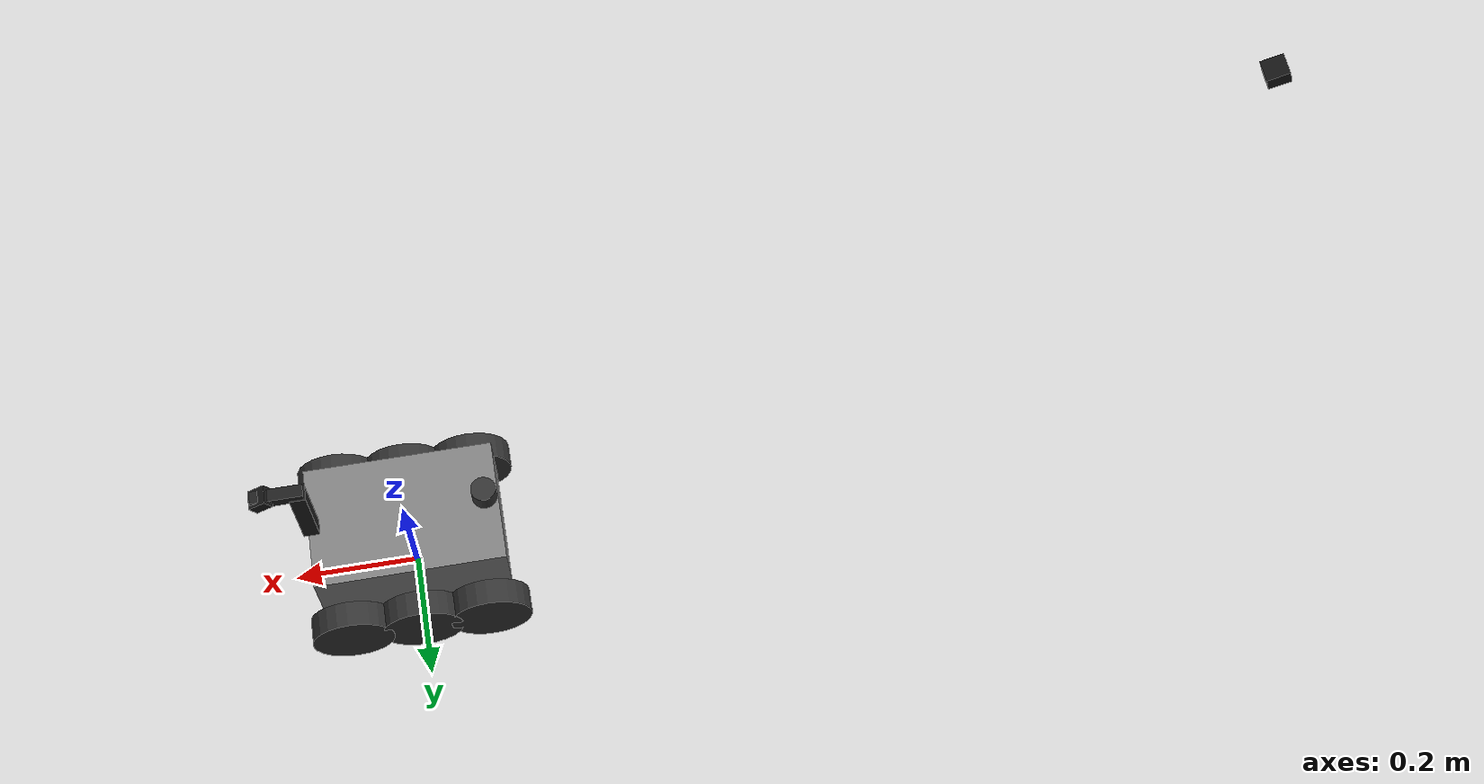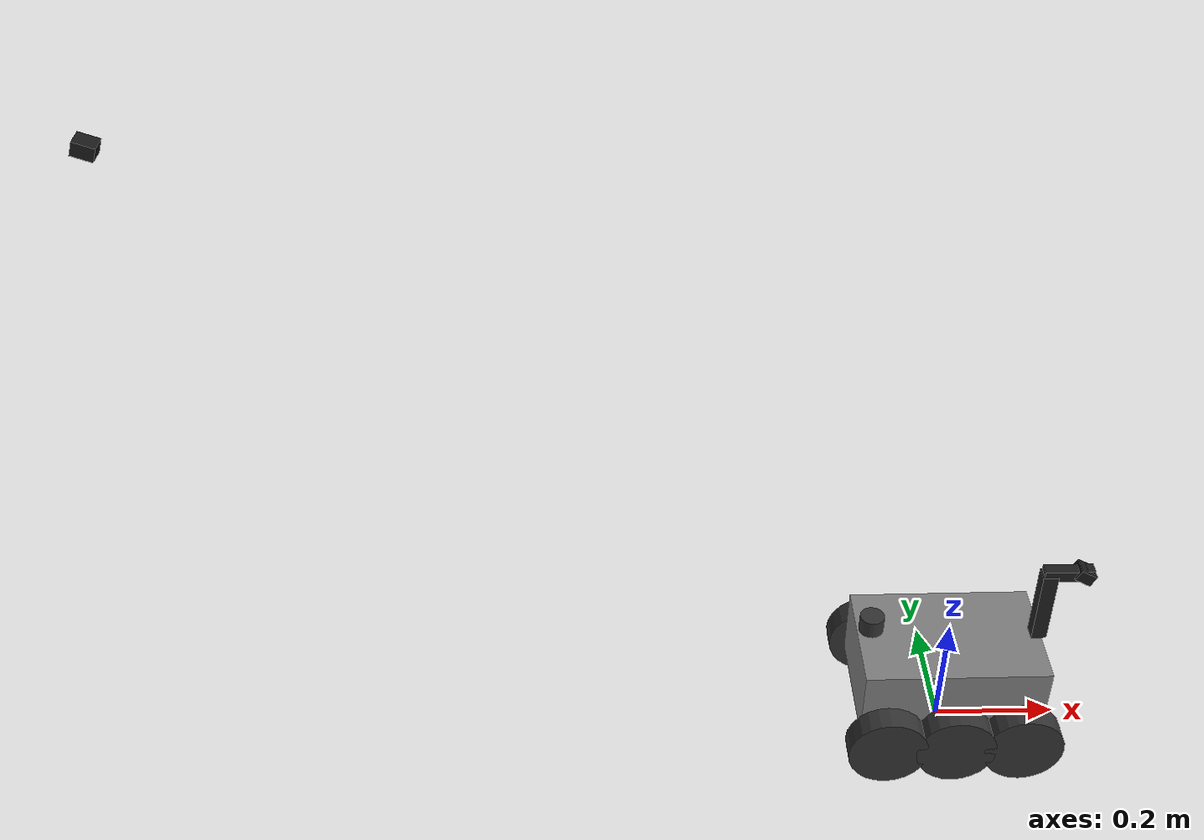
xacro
<?xml version="1.0"?>
<robot name="exomy" xmlns:xacro="http://www.ros.org/wiki/xacro">

  <!-- ── Constants ─────────────────────────────────────────────── -->
  <xacro:property name="body_length" value="0.300"/>
  <xacro:property name="body_width"  value="0.200"/>
  <xacro:property name="body_height" value="0.120"/>

  <xacro:property name="wheel_radius" value="0.065"/>
  <xacro:property name="wheel_width"  value="0.040"/>
  <xacro:property name="wheel_mass"   value="0.150"/>

  <!-- Wheel X positions: front / middle / rear -->
  <xacro:property name="wheel_x_front"  value="0.110"/>
  <xacro:property name="wheel_x_mid"    value="0.000"/>
  <xacro:property name="wheel_x_rear"   value="-0.110"/>
  <!-- Wheel Y: half body width + small offset -->
  <xacro:property name="wheel_y"        value="0.130"/>
  <!-- Ground clearance: wheels touch ground, body raised -->
  <xacro:property name="ground_clearance" value="0.065"/>

  <xacro:property name="camera_x" value="0.200"/>
  <xacro:property name="camera_z" value="0.250"/>

  <!-- ── Inertia macros ─────────────────────────────────────────── -->
  <xacro:macro name="box_inertia" params="m x y z">
    <inertial>
      <mass value="${m}"/>
      <inertia ixx="${m*(y*y+z*z)/12}" ixy="0" ixz="0"
               iyy="${m*(x*x+z*z)/12}" iyz="0"
               izz="${m*(x*x+y*y)/12}"/>
    </inertial>
  </xacro:macro>

  <xacro:macro name="cylinder_inertia" params="m r h">
    <inertial>
      <mass value="${m}"/>
      <inertia ixx="${m*(3*r*r+h*h)/12}" ixy="0" ixz="0"
               iyy="${m*(3*r*r+h*h)/12}" iyz="0"
               izz="${m*r*r/2}"/>
    </inertial>
  </xacro:macro>

  <!-- ── Base link (body) ──────────────────────────────────────── -->
  <link name="base_link">
    <visual>
      <origin xyz="0 0 ${ground_clearance + body_height/2}"/>
      <geometry>
        <box size="${body_length} ${body_width} ${body_height}"/>
      </geometry>
      <material name="grey">
        <color rgba="0.5 0.5 0.5 1.0"/>
      </material>
    </visual>
    <visual name="camera_mast">
      <origin xyz="0.145 0 0.250"/>
      <geometry>
        <box size="0.025 0.025 0.130"/>
      </geometry>
      <material name="camera_mount_dark">
        <color rgba="0.12 0.12 0.12 1.0"/>
      </material>
    </visual>
    <visual name="camera_boom">
      <origin xyz="0.175 0 0.315"/>
      <geometry>
        <box size="0.080 0.020 0.020"/>
      </geometry>
      <material name="camera_mount_dark">
        <color rgba="0.12 0.12 0.12 1.0"/>
      </material>
    </visual>
    <collision>
      <origin xyz="0 0 ${ground_clearance + body_height/2}"/>
      <geometry>
        <box size="${body_length} ${body_width} ${body_height}"/>
      </geometry>
    </collision>
    <xacro:box_inertia m="3.0"
      x="${body_length}" y="${body_width}" z="${body_height}"/>
  </link>

  <!-- ── Wheel macro ───────────────────────────────────────────── -->
  <xacro:macro name="wheel" params="name x y">
    <link name="wheel_${name}">
      <visual>
        <origin xyz="0 0 0" rpy="${pi/2} 0 0"/>
        <geometry>
          <cylinder radius="${wheel_radius}" length="${wheel_width}"/>
        </geometry>
        <material name="dark_grey">
          <color rgba="0.2 0.2 0.2 1.0"/>
        </material>
      </visual>
      <collision>
        <origin xyz="0 0 0" rpy="${pi/2} 0 0"/>
        <geometry>
          <cylinder radius="${wheel_radius}" length="${wheel_width}"/>
        </geometry>
      </collision>
      <xacro:cylinder_inertia m="${wheel_mass}"
        r="${wheel_radius}" h="${wheel_width}"/>
    </link>

    <joint name="joint_wheel_${name}" type="continuous">
      <parent link="base_link"/>
      <child  link="wheel_${name}"/>
      <origin xyz="${x} ${y} ${wheel_radius}" rpy="0 0 0"/>
      <axis xyz="0 1 0"/>
      <dynamics damping="0.1" friction="0.1"/>
    </joint>
  </xacro:macro>

  <!-- 6 wheels: FL FR ML MR RL RR -->
  <xacro:wheel name="FL" x="${wheel_x_front}" y=" ${wheel_y}"/>
  <xacro:wheel name="FR" x="${wheel_x_front}" y="-${wheel_y}"/>
  <xacro:wheel name="ML" x="${wheel_x_mid}"   y=" ${wheel_y}"/>
  <xacro:wheel name="MR" x="${wheel_x_mid}"   y="-${wheel_y}"/>
  <xacro:wheel name="RL" x="${wheel_x_rear}"  y=" ${wheel_y}"/>
  <xacro:wheel name="RR" x="${wheel_x_rear}"  y="-${wheel_y}"/>

  <!-- ── Camera mount ──────────────────────────────────────────── -->
  <link name="camera_link">
    <visual>
      <geometry><box size="0.030 0.030 0.020"/></geometry>
      <material name="black"><color rgba="0.1 0.1 0.1 1.0"/></material>
    </visual>
    <collision>
      <geometry><box size="0.030 0.030 0.020"/></geometry>
    </collision>
    <xacro:box_inertia m="0.05" x="0.03" y="0.03" z="0.02"/>
  </link>

  <joint name="joint_camera" type="fixed">
    <parent link="base_link"/>
    <child  link="camera_link"/>
    <origin xyz="${camera_x} 0 ${ground_clearance + camera_z}" rpy="0 0.5 0"/>
  </joint>

  <!-- Camera optical frame (ROS convention: Z-forward, X-right, Y-down) -->
  <link name="camera_optical_frame"/>
  <joint name="joint_camera_optical" type="fixed">
    <parent link="camera_link"/>
    <child  link="camera_optical_frame"/>
    <origin xyz="0 0 0" rpy="${-pi/2} 0 ${-pi/2}"/>
  </joint>

  <link name="chase_cam_link">
    <visual>
      <geometry><box size="0.030 0.030 0.020"/></geometry>
      <material name="black"><color rgba="0.1 0.1 0.1 1.0"/></material>
    </visual>
    <collision>
      <geometry><box size="0.030 0.030 0.020"/></geometry>
    </collision>
    <xacro:box_inertia m="0.05" x="0.03" y="0.03" z="0.02"/>
  </link>

  <joint name="joint_chase_cam" type="fixed">
    <parent link="base_link"/>
    <child  link="chase_cam_link"/>
    <origin xyz="-1.2 0 ${ground_clearance + 1.0}" rpy="0 0.35 0"/>
  </joint>

  <link name="chase_cam_optical_frame"/>
  <joint name="joint_chase_cam_optical" type="fixed">
    <parent link="chase_cam_link"/>
    <child  link="chase_cam_optical_frame"/>
    <origin xyz="0 0 0" rpy="${-pi/2} 0 ${-pi/2}"/>
  </joint>

  <!-- ── LiDAR mount (rear-top, mirrors the real RPLIDAR C1 mounting plan) ── -->
  <link name="lidar_link">
    <visual>
      <geometry><cylinder radius="0.020" length="0.030"/></geometry>
      <material name="dark_grey"><color rgba="0.2 0.2 0.2 1.0"/></material>
    </visual>
    <collision>
      <geometry><cylinder radius="0.020" length="0.030"/></geometry>
    </collision>
    <xacro:cylinder_inertia m="0.05" r="0.020" h="0.030"/>
  </link>

  <joint name="joint_lidar" type="fixed">
    <parent link="base_link"/>
    <child  link="lidar_link"/>
    <origin xyz="-0.130 0 ${ground_clearance + body_height + 0.030}" rpy="0 0 0"/>
  </joint>

  <!-- ── Gazebo plugins ─────────────────────────────────────────── -->

  <gazebo>
    <plugin name="diff_drive" filename="libgazebo_ros_diff_drive.so">
      <ros><namespace>/exomy</namespace></ros>
      <num_wheel_pairs>3</num_wheel_pairs>
      <left_joint>joint_wheel_FL</left_joint>
      <right_joint>joint_wheel_FR</right_joint>
      <left_joint>joint_wheel_ML</left_joint>
      <right_joint>joint_wheel_MR</right_joint>
      <left_joint>joint_wheel_RL</left_joint>
      <right_joint>joint_wheel_RR</right_joint>
      <wheel_separation>${2 * wheel_y}</wheel_separation>
      <wheel_diameter>${2 * wheel_radius}</wheel_diameter>
      <max_wheel_torque>20</max_wheel_torque>
      <max_wheel_acceleration>1.0</max_wheel_acceleration>
      <publish_odom>true</publish_odom>
      <publish_odom_tf>true</publish_odom_tf>
      <publish_wheel_tf>true</publish_wheel_tf>
      <odometry_frame>odom</odometry_frame>
      <robot_base_frame>base_link</robot_base_frame>
    </plugin>
  </gazebo>

  <!-- RGB Camera -->
  <gazebo reference="camera_link">
    <sensor type="camera" name="exomy_camera">
      <update_rate>10</update_rate>
      <camera name="exomy_cam">
        <horizontal_fov>1.3962634</horizontal_fov>  <!-- 80 deg controlled Gazebo framing -->
        <image>
          <width>640</width>
          <height>480</height>
          <format>R8G8B8</format>
        </image>
        <clip><near>0.02</near><far>300</far></clip>
      </camera>
      <plugin name="camera_plugin" filename="libgazebo_ros_camera.so">
        <ros><namespace>/exomy</namespace></ros>
        <camera_name>camera</camera_name>
        <frame_name>camera_optical_frame</frame_name>
        <hack_baseline>0</hack_baseline>
      </plugin>
    </sensor>
  </gazebo>

  <!-- Chase camera (see chase_cam_link comment above) -->
  <gazebo reference="chase_cam_link">
    <sensor type="camera" name="exomy_chase_cam">
      <update_rate>15</update_rate>
      <camera name="exomy_chase_cam_cam">
        <horizontal_fov>1.2</horizontal_fov>
        <image>
          <width>640</width>
          <height>480</height>
          <format>R8G8B8</format>
        </image>
        <clip><near>0.05</near><far>300</far></clip>
      </camera>
      <plugin name="chase_cam_plugin" filename="libgazebo_ros_camera.so">
        <ros><namespace>/exomy</namespace></ros>
        <camera_name>chase_cam</camera_name>
        <frame_name>chase_cam_optical_frame</frame_name>
        <hack_baseline>0</hack_baseline>
      </plugin>
    </sensor>
  </gazebo>

  <!-- IMU sensor — for future slip detection (Exp 5b sim-to-real gap test) -->
  <!-- Publishes /exomy/imu_raw (sensor_msgs/Imu): linear_acceleration + angular_velocity -->
  <gazebo reference="base_link">
    <sensor name="imu_sensor" type="imu">
      <always_on>true</always_on>
      <update_rate>100</update_rate>
      <plugin name="imu_plugin" filename="libgazebo_ros_imu_sensor.so">
        <ros>
          <namespace>/exomy</namespace>
          <remapping>~/out:=imu_raw</remapping>
        </ros>
        <initial_orientation_as_reference>false</initial_orientation_as_reference>
      </plugin>
    </sensor>
  </gazebo>

  <!-- Simulated LiDAR (proxy for RPLIDAR C1) -->
  <!-- Publishes /scan (sensor_msgs/LaserScan), consumed by lidar_proximity_guard_node.py. -->
  <!-- Its default scan_topic is plain /scan, hence no namespace here. -->
  <gazebo reference="lidar_link">
    <sensor type="ray" name="lidar_sensor">
      <pose>0 0 0 0 0 0</pose>
      <visualize>false</visualize>
      <update_rate>10</update_rate>
      <ray>
        <scan>
          <horizontal>
            <samples>360</samples>
            <resolution>1</resolution>
            <min_angle>-3.14159265</min_angle>
            <max_angle>3.14159265</max_angle>
          </horizontal>
        </scan>
        <range>
          <min>0.05</min>
          <max>12.0</max>
          <resolution>0.01</resolution>
        </range>
      </ray>
      <plugin name="lidar_plugin" filename="libgazebo_ros_ray_sensor.so">
        <ros>
          <remapping>~/out:=scan</remapping>
        </ros>
        <output_type>sensor_msgs/LaserScan</output_type>
        <frame_name>lidar_link</frame_name>
      </plugin>
    </sensor>
  </gazebo>

  <!-- Wheel friction (Mars regolith: low friction) -->
  <xacro:macro name="wheel_friction" params="name">
    <gazebo reference="wheel_${name}">
      <mu1>0.8</mu1>
      <mu2>0.8</mu2>
      <kp>1e6</kp>
      <kd>1.0</kd>
    </gazebo>
  </xacro:macro>
  <xacro:wheel_friction name="FL"/>
  <xacro:wheel_friction name="FR"/>
  <xacro:wheel_friction name="ML"/>
  <xacro:wheel_friction name="MR"/>
  <xacro:wheel_friction name="RL"/>
  <xacro:wheel_friction name="RR"/>

</robot>
